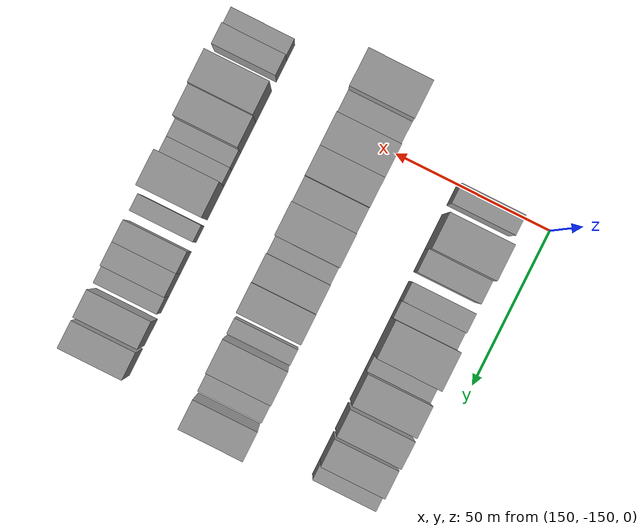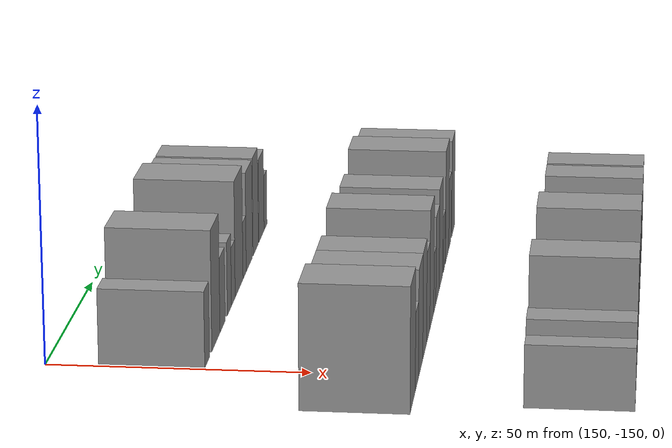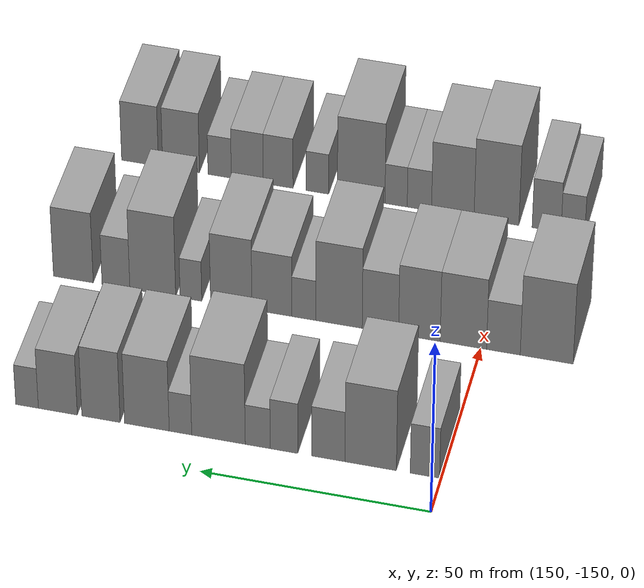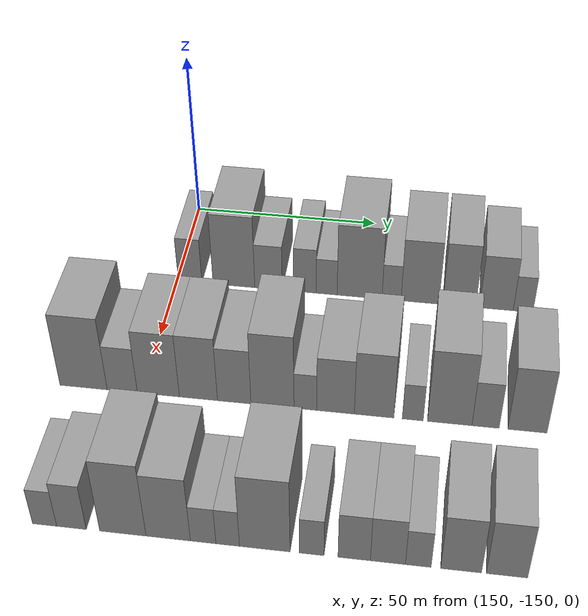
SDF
<sdf version="1.6">
 <world name="default">
  <model name="building_469">
   <static>1</static>
   <pose>170.0000 -146.4480 0 0.000000 0.000000 0.000000</pose>
   <link name="link">
    <pose>0 0 7.50 0 0 0</pose>
    <collision name="collision"><geometry><box><size>20.0000 6.3580 15.0000</size></box></geometry></collision>
    <visual name="visual">
     <cast_shadows>0</cast_shadows>
     <geometry><box><size>20.0000 6.3580 15.0000</size></box></geometry>
     <material>
      <script>
       <uri>model://grey_wall/materials/scripts</uri>
       <uri>model://grey_wall/materials/textures</uri>
       <name>vrc/grey_wall</name>
      </script>
     </material>
    </visual>
   </link>
  </model>
  <model name="building_470">
   <static>1</static>
   <pose>170.0000 -134.6839 0 0.000000 0.000000 0.000000</pose>
   <link name="link">
    <pose>0 0 12.00 0 0 0</pose>
    <collision name="collision"><geometry><box><size>20.0000 11.1701 24.0000</size></box></geometry></collision>
    <visual name="visual">
     <cast_shadows>0</cast_shadows>
     <geometry><box><size>20.0000 11.1701 24.0000</size></box></geometry>
     <material>
      <script>
       <uri>model://grey_wall/materials/scripts</uri>
       <uri>model://grey_wall/materials/textures</uri>
       <name>vrc/grey_wall</name>
      </script>
     </material>
    </visual>
   </link>
  </model>
  <model name="building_471">
   <static>1</static>
   <pose>170.0000 -125.4495 0 0.000000 0.000000 0.000000</pose>
   <link name="link">
    <pose>0 0 7.50 0 0 0</pose>
    <collision name="collision"><geometry><box><size>20.0000 7.2988 15.0000</size></box></geometry></collision>
    <visual name="visual">
     <cast_shadows>0</cast_shadows>
     <geometry><box><size>20.0000 7.2988 15.0000</size></box></geometry>
     <material>
      <script>
       <uri>model://grey_wall/materials/scripts</uri>
       <uri>model://grey_wall/materials/textures</uri>
       <name>vrc/grey_wall</name>
      </script>
     </material>
    </visual>
   </link>
  </model>
  <model name="building_472">
   <static>1</static>
   <pose>170.0000 -115.7820 0 0.000000 0.000000 0.000000</pose>
   <link name="link">
    <pose>0 0 7.50 0 0 0</pose>
    <collision name="collision"><geometry><box><size>20.0000 6.0361 15.0000</size></box></geometry></collision>
    <visual name="visual">
     <cast_shadows>0</cast_shadows>
     <geometry><box><size>20.0000 6.0361 15.0000</size></box></geometry>
     <material>
      <script>
       <uri>model://grey_wall/materials/scripts</uri>
       <uri>model://grey_wall/materials/textures</uri>
       <name>vrc/grey_wall</name>
      </script>
     </material>
    </visual>
   </link>
  </model>
  <model name="building_473">
   <static>1</static>
   <pose>170.0000 -110.0253 0 0.000000 0.000000 0.000000</pose>
   <link name="link">
    <pose>0 0 6.00 0 0 0</pose>
    <collision name="collision"><geometry><box><size>20.0000 5.4774 12.0000</size></box></geometry></collision>
    <visual name="visual">
     <cast_shadows>0</cast_shadows>
     <geometry><box><size>20.0000 5.4774 12.0000</size></box></geometry>
     <material>
      <script>
       <uri>model://grey_wall/materials/scripts</uri>
       <uri>model://grey_wall/materials/textures</uri>
       <name>vrc/grey_wall</name>
      </script>
     </material>
    </visual>
   </link>
  </model>
  <model name="building_474">
   <static>1</static>
   <pose>170.0000 -101.3930 0 0.000000 0.000000 0.000000</pose>
   <link name="link">
    <pose>0 0 12.00 0 0 0</pose>
    <collision name="collision"><geometry><box><size>20.0000 11.7872 24.0000</size></box></geometry></collision>
    <visual name="visual">
     <cast_shadows>0</cast_shadows>
     <geometry><box><size>20.0000 11.7872 24.0000</size></box></geometry>
     <material>
      <script>
       <uri>model://grey_wall/materials/scripts</uri>
       <uri>model://grey_wall/materials/textures</uri>
       <name>vrc/grey_wall</name>
      </script>
     </material>
    </visual>
   </link>
  </model>
  <model name="building_475">
   <static>1</static>
   <pose>170.0000 -93.0215 0 0.000000 0.000000 0.000000</pose>
   <link name="link">
    <pose>0 0 6.00 0 0 0</pose>
    <collision name="collision"><geometry><box><size>20.0000 4.9559 12.0000</size></box></geometry></collision>
    <visual name="visual">
     <cast_shadows>0</cast_shadows>
     <geometry><box><size>20.0000 4.9559 12.0000</size></box></geometry>
     <material>
      <script>
       <uri>model://grey_wall/materials/scripts</uri>
       <uri>model://grey_wall/materials/textures</uri>
       <name>vrc/grey_wall</name>
      </script>
     </material>
    </visual>
   </link>
  </model>
  <model name="building_476">
   <static>1</static>
   <pose>170.0000 -85.6136 0 0.000000 0.000000 0.000000</pose>
   <link name="link">
    <pose>0 0 10.50 0 0 0</pose>
    <collision name="collision"><geometry><box><size>20.0000 9.8600 21.0000</size></box></geometry></collision>
    <visual name="visual">
     <cast_shadows>0</cast_shadows>
     <geometry><box><size>20.0000 9.8600 21.0000</size></box></geometry>
     <material>
      <script>
       <uri>model://grey_wall/materials/scripts</uri>
       <uri>model://grey_wall/materials/textures</uri>
       <name>vrc/grey_wall</name>
      </script>
     </material>
    </visual>
   </link>
  </model>
  <model name="building_477">
   <static>1</static>
   <pose>170.0000 -75.4367 0 0.000000 0.000000 0.000000</pose>
   <link name="link">
    <pose>0 0 10.50 0 0 0</pose>
    <collision name="collision"><geometry><box><size>20.0000 8.4937 21.0000</size></box></geometry></collision>
    <visual name="visual">
     <cast_shadows>0</cast_shadows>
     <geometry><box><size>20.0000 8.4937 21.0000</size></box></geometry>
     <material>
      <script>
       <uri>model://grey_wall/materials/scripts</uri>
       <uri>model://grey_wall/materials/textures</uri>
       <name>vrc/grey_wall</name>
      </script>
     </material>
    </visual>
   </link>
  </model>
  <model name="building_478">
   <static>1</static>
   <pose>170.0000 -65.8563 0 0.000000 0.000000 0.000000</pose>
   <link name="link">
    <pose>0 0 9.00 0 0 0</pose>
    <collision name="collision"><geometry><box><size>20.0000 8.6671 18.0000</size></box></geometry></collision>
    <visual name="visual">
     <cast_shadows>0</cast_shadows>
     <geometry><box><size>20.0000 8.6671 18.0000</size></box></geometry>
     <material>
      <script>
       <uri>model://grey_wall/materials/scripts</uri>
       <uri>model://grey_wall/materials/textures</uri>
       <name>vrc/grey_wall</name>
      </script>
     </material>
    </visual>
   </link>
  </model>
  <model name="building_479">
   <static>1</static>
   <pose>170.0000 -59.0038 0 0.000000 0.000000 0.000000</pose>
   <link name="link">
    <pose>0 0 6.00 0 0 0</pose>
    <collision name="collision"><geometry><box><size>20.0000 5.0380 12.0000</size></box></geometry></collision>
    <visual name="visual">
     <cast_shadows>0</cast_shadows>
     <geometry><box><size>20.0000 5.0380 12.0000</size></box></geometry>
     <material>
      <script>
       <uri>model://grey_wall/materials/scripts</uri>
       <uri>model://grey_wall/materials/textures</uri>
       <name>vrc/grey_wall</name>
      </script>
     </material>
    </visual>
   </link>
  </model>
  <model name="building_594">
   <static>1</static>
   <pose>210.0000 -164.5522 0 0.000000 0.000000 0.000000</pose>
   <link name="link">
    <pose>0 0 12.00 0 0 0</pose>
    <collision name="collision"><geometry><box><size>20.0000 11.7054 24.0000</size></box></geometry></collision>
    <visual name="visual">
     <cast_shadows>0</cast_shadows>
     <geometry><box><size>20.0000 11.7054 24.0000</size></box></geometry>
     <material>
      <script>
       <uri>model://grey_wall/materials/scripts</uri>
       <uri>model://grey_wall/materials/textures</uri>
       <name>vrc/grey_wall</name>
      </script>
     </material>
    </visual>
   </link>
  </model>
  <model name="building_595">
   <static>1</static>
   <pose>210.0000 -154.9670 0 0.000000 0.000000 0.000000</pose>
   <link name="link">
    <pose>0 0 7.50 0 0 0</pose>
    <collision name="collision"><geometry><box><size>20.0000 7.4651 15.0000</size></box></geometry></collision>
    <visual name="visual">
     <cast_shadows>0</cast_shadows>
     <geometry><box><size>20.0000 7.4651 15.0000</size></box></geometry>
     <material>
      <script>
       <uri>model://grey_wall/materials/scripts</uri>
       <uri>model://grey_wall/materials/textures</uri>
       <name>vrc/grey_wall</name>
      </script>
     </material>
    </visual>
   </link>
  </model>
  <model name="building_596">
   <static>1</static>
   <pose>210.0000 -146.0755 0 0.000000 0.000000 0.000000</pose>
   <link name="link">
    <pose>0 0 10.50 0 0 0</pose>
    <collision name="collision"><geometry><box><size>20.0000 10.3178 21.0000</size></box></geometry></collision>
    <visual name="visual">
     <cast_shadows>0</cast_shadows>
     <geometry><box><size>20.0000 10.3178 21.0000</size></box></geometry>
     <material>
      <script>
       <uri>model://grey_wall/materials/scripts</uri>
       <uri>model://grey_wall/materials/textures</uri>
       <name>vrc/grey_wall</name>
      </script>
     </material>
    </visual>
   </link>
  </model>
  <model name="building_597">
   <static>1</static>
   <pose>210.0000 -136.2790 0 0.000000 0.000000 0.000000</pose>
   <link name="link">
    <pose>0 0 10.50 0 0 0</pose>
    <collision name="collision"><geometry><box><size>20.0000 9.2751 21.0000</size></box></geometry></collision>
    <visual name="visual">
     <cast_shadows>0</cast_shadows>
     <geometry><box><size>20.0000 9.2751 21.0000</size></box></geometry>
     <material>
      <script>
       <uri>model://grey_wall/materials/scripts</uri>
       <uri>model://grey_wall/materials/textures</uri>
       <name>vrc/grey_wall</name>
      </script>
     </material>
    </visual>
   </link>
  </model>
  <model name="building_598">
   <static>1</static>
   <pose>210.0000 -127.5745 0 0.000000 0.000000 0.000000</pose>
   <link name="link">
    <pose>0 0 9.00 0 0 0</pose>
    <collision name="collision"><geometry><box><size>20.0000 8.1339 18.0000</size></box></geometry></collision>
    <visual name="visual">
     <cast_shadows>0</cast_shadows>
     <geometry><box><size>20.0000 8.1339 18.0000</size></box></geometry>
     <material>
      <script>
       <uri>model://grey_wall/materials/scripts</uri>
       <uri>model://grey_wall/materials/textures</uri>
       <name>vrc/grey_wall</name>
      </script>
     </material>
    </visual>
   </link>
  </model>
  <model name="building_599">
   <static>1</static>
   <pose>210.0000 -118.3195 0 0.000000 0.000000 0.000000</pose>
   <link name="link">
    <pose>0 0 12.00 0 0 0</pose>
    <collision name="collision"><geometry><box><size>20.0000 10.3760 24.0000</size></box></geometry></collision>
    <visual name="visual">
     <cast_shadows>0</cast_shadows>
     <geometry><box><size>20.0000 10.3760 24.0000</size></box></geometry>
     <material>
      <script>
       <uri>model://grey_wall/materials/scripts</uri>
       <uri>model://grey_wall/materials/textures</uri>
       <name>vrc/grey_wall</name>
      </script>
     </material>
    </visual>
   </link>
  </model>
  <model name="building_600">
   <static>1</static>
   <pose>210.0000 -110.4123 0 0.000000 0.000000 0.000000</pose>
   <link name="link">
    <pose>0 0 6.00 0 0 0</pose>
    <collision name="collision"><geometry><box><size>20.0000 5.4385 12.0000</size></box></geometry></collision>
    <visual name="visual">
     <cast_shadows>0</cast_shadows>
     <geometry><box><size>20.0000 5.4385 12.0000</size></box></geometry>
     <material>
      <script>
       <uri>model://grey_wall/materials/scripts</uri>
       <uri>model://grey_wall/materials/textures</uri>
       <name>vrc/grey_wall</name>
      </script>
     </material>
    </visual>
   </link>
  </model>
  <model name="building_601">
   <static>1</static>
   <pose>210.0000 -103.1990 0 0.000000 0.000000 0.000000</pose>
   <link name="link">
    <pose>0 0 9.00 0 0 0</pose>
    <collision name="collision"><geometry><box><size>20.0000 8.9881 18.0000</size></box></geometry></collision>
    <visual name="visual">
     <cast_shadows>0</cast_shadows>
     <geometry><box><size>20.0000 8.9881 18.0000</size></box></geometry>
     <material>
      <script>
       <uri>model://grey_wall/materials/scripts</uri>
       <uri>model://grey_wall/materials/textures</uri>
       <name>vrc/grey_wall</name>
      </script>
     </material>
    </visual>
   </link>
  </model>
  <model name="building_602">
   <static>1</static>
   <pose>210.0000 -94.0237 0 0.000000 0.000000 0.000000</pose>
   <link name="link">
    <pose>0 0 10.50 0 0 0</pose>
    <collision name="collision"><geometry><box><size>20.0000 9.3627 21.0000</size></box></geometry></collision>
    <visual name="visual">
     <cast_shadows>0</cast_shadows>
     <geometry><box><size>20.0000 9.3627 21.0000</size></box></geometry>
     <material>
      <script>
       <uri>model://grey_wall/materials/scripts</uri>
       <uri>model://grey_wall/materials/textures</uri>
       <name>vrc/grey_wall</name>
      </script>
     </material>
    </visual>
   </link>
  </model>
  <model name="building_603">
   <static>1</static>
   <pose>210.0000 -84.8822 0 0.000000 0.000000 0.000000</pose>
   <link name="link">
    <pose>0 0 6.00 0 0 0</pose>
    <collision name="collision"><geometry><box><size>20.0000 4.9202 12.0000</size></box></geometry></collision>
    <visual name="visual">
     <cast_shadows>0</cast_shadows>
     <geometry><box><size>20.0000 4.9202 12.0000</size></box></geometry>
     <material>
      <script>
       <uri>model://grey_wall/materials/scripts</uri>
       <uri>model://grey_wall/materials/textures</uri>
       <name>vrc/grey_wall</name>
      </script>
     </material>
    </visual>
   </link>
  </model>
  <model name="building_604">
   <static>1</static>
   <pose>210.0000 -76.2095 0 0.000000 0.000000 0.000000</pose>
   <link name="link">
    <pose>0 0 12.00 0 0 0</pose>
    <collision name="collision"><geometry><box><size>20.0000 10.4253 24.0000</size></box></geometry></collision>
    <visual name="visual">
     <cast_shadows>0</cast_shadows>
     <geometry><box><size>20.0000 10.4253 24.0000</size></box></geometry>
     <material>
      <script>
       <uri>model://grey_wall/materials/scripts</uri>
       <uri>model://grey_wall/materials/textures</uri>
       <name>vrc/grey_wall</name>
      </script>
     </material>
    </visual>
   </link>
  </model>
  <model name="building_605">
   <static>1</static>
   <pose>210.0000 -67.8188 0 0.000000 0.000000 0.000000</pose>
   <link name="link">
    <pose>0 0 7.50 0 0 0</pose>
    <collision name="collision"><geometry><box><size>20.0000 6.3562 15.0000</size></box></geometry></collision>
    <visual name="visual">
     <cast_shadows>0</cast_shadows>
     <geometry><box><size>20.0000 6.3562 15.0000</size></box></geometry>
     <material>
      <script>
       <uri>model://grey_wall/materials/scripts</uri>
       <uri>model://grey_wall/materials/textures</uri>
       <name>vrc/grey_wall</name>
      </script>
     </material>
    </visual>
   </link>
  </model>
  <model name="building_606">
   <static>1</static>
   <pose>210.0000 -58.0944 0 0.000000 0.000000 0.000000</pose>
   <link name="link">
    <pose>0 0 10.50 0 0 0</pose>
    <collision name="collision"><geometry><box><size>20.0000 9.0926 21.0000</size></box></geometry></collision>
    <visual name="visual">
     <cast_shadows>0</cast_shadows>
     <geometry><box><size>20.0000 9.0926 21.0000</size></box></geometry>
     <material>
      <script>
       <uri>model://grey_wall/materials/scripts</uri>
       <uri>model://grey_wall/materials/textures</uri>
       <name>vrc/grey_wall</name>
      </script>
     </material>
    </visual>
   </link>
  </model>
  <model name="building_733">
   <static>1</static>
   <pose>250.0000 -162.3599 0 0.000000 0.000000 0.000000</pose>
   <link name="link">
    <pose>0 0 6.00 0 0 0</pose>
    <collision name="collision"><geometry><box><size>20.0000 5.3943 12.0000</size></box></geometry></collision>
    <visual name="visual">
     <cast_shadows>0</cast_shadows>
     <geometry><box><size>20.0000 5.3943 12.0000</size></box></geometry>
     <material>
      <script>
       <uri>model://grey_wall/materials/scripts</uri>
       <uri>model://grey_wall/materials/textures</uri>
       <name>vrc/grey_wall</name>
      </script>
     </material>
    </visual>
   </link>
  </model>
  <model name="building_734">
   <static>1</static>
   <pose>250.0000 -156.3688 0 0.000000 0.000000 0.000000</pose>
   <link name="link">
    <pose>0 0 7.50 0 0 0</pose>
    <collision name="collision"><geometry><box><size>20.0000 6.5880 15.0000</size></box></geometry></collision>
    <visual name="visual">
     <cast_shadows>0</cast_shadows>
     <geometry><box><size>20.0000 6.5880 15.0000</size></box></geometry>
     <material>
      <script>
       <uri>model://grey_wall/materials/scripts</uri>
       <uri>model://grey_wall/materials/textures</uri>
       <name>vrc/grey_wall</name>
      </script>
     </material>
    </visual>
   </link>
  </model>
  <model name="building_735">
   <static>1</static>
   <pose>250.0000 -144.9502 0 0.000000 0.000000 0.000000</pose>
   <link name="link">
    <pose>0 0 12.00 0 0 0</pose>
    <collision name="collision"><geometry><box><size>20.0000 10.2491 24.0000</size></box></geometry></collision>
    <visual name="visual">
     <cast_shadows>0</cast_shadows>
     <geometry><box><size>20.0000 10.2491 24.0000</size></box></geometry>
     <material>
      <script>
       <uri>model://grey_wall/materials/scripts</uri>
       <uri>model://grey_wall/materials/textures</uri>
       <name>vrc/grey_wall</name>
      </script>
     </material>
    </visual>
   </link>
  </model>
  <model name="building_736">
   <static>1</static>
   <pose>250.0000 -134.9569 0 0.000000 0.000000 0.000000</pose>
   <link name="link">
    <pose>0 0 10.50 0 0 0</pose>
    <collision name="collision"><geometry><box><size>20.0000 9.7377 21.0000</size></box></geometry></collision>
    <visual name="visual">
     <cast_shadows>0</cast_shadows>
     <geometry><box><size>20.0000 9.7377 21.0000</size></box></geometry>
     <material>
      <script>
       <uri>model://grey_wall/materials/scripts</uri>
       <uri>model://grey_wall/materials/textures</uri>
       <name>vrc/grey_wall</name>
      </script>
     </material>
    </visual>
   </link>
  </model>
  <model name="building_737">
   <static>1</static>
   <pose>250.0000 -127.3002 0 0.000000 0.000000 0.000000</pose>
   <link name="link">
    <pose>0 0 6.00 0 0 0</pose>
    <collision name="collision"><geometry><box><size>20.0000 5.5757 12.0000</size></box></geometry></collision>
    <visual name="visual">
     <cast_shadows>0</cast_shadows>
     <geometry><box><size>20.0000 5.5757 12.0000</size></box></geometry>
     <material>
      <script>
       <uri>model://grey_wall/materials/scripts</uri>
       <uri>model://grey_wall/materials/textures</uri>
       <name>vrc/grey_wall</name>
      </script>
     </material>
    </visual>
   </link>
  </model>
  <model name="building_738">
   <static>1</static>
   <pose>250.0000 -121.9573 0 0.000000 0.000000 0.000000</pose>
   <link name="link">
    <pose>0 0 6.00 0 0 0</pose>
    <collision name="collision"><geometry><box><size>20.0000 5.1099 12.0000</size></box></geometry></collision>
    <visual name="visual">
     <cast_shadows>0</cast_shadows>
     <geometry><box><size>20.0000 5.1099 12.0000</size></box></geometry>
     <material>
      <script>
       <uri>model://grey_wall/materials/scripts</uri>
       <uri>model://grey_wall/materials/textures</uri>
       <name>vrc/grey_wall</name>
      </script>
     </material>
    </visual>
   </link>
  </model>
  <model name="building_739">
   <static>1</static>
   <pose>250.0000 -113.9243 0 0.000000 0.000000 0.000000</pose>
   <link name="link">
    <pose>0 0 12.00 0 0 0</pose>
    <collision name="collision"><geometry><box><size>20.0000 10.9561 24.0000</size></box></geometry></collision>
    <visual name="visual">
     <cast_shadows>0</cast_shadows>
     <geometry><box><size>20.0000 10.9561 24.0000</size></box></geometry>
     <material>
      <script>
       <uri>model://grey_wall/materials/scripts</uri>
       <uri>model://grey_wall/materials/textures</uri>
       <name>vrc/grey_wall</name>
      </script>
     </material>
    </visual>
   </link>
  </model>
  <model name="building_740">
   <static>1</static>
   <pose>250.0000 -103.8086 0 0.000000 0.000000 0.000000</pose>
   <link name="link">
    <pose>0 0 6.00 0 0 0</pose>
    <collision name="collision"><geometry><box><size>20.0000 5.2754 12.0000</size></box></geometry></collision>
    <visual name="visual">
     <cast_shadows>0</cast_shadows>
     <geometry><box><size>20.0000 5.2754 12.0000</size></box></geometry>
     <material>
      <script>
       <uri>model://grey_wall/materials/scripts</uri>
       <uri>model://grey_wall/materials/textures</uri>
       <name>vrc/grey_wall</name>
      </script>
     </material>
    </visual>
   </link>
  </model>
  <model name="building_741">
   <static>1</static>
   <pose>250.0000 -94.7189 0 0.000000 0.000000 0.000000</pose>
   <link name="link">
    <pose>0 0 7.50 0 0 0</pose>
    <collision name="collision"><geometry><box><size>20.0000 6.9039 15.0000</size></box></geometry></collision>
    <visual name="visual">
     <cast_shadows>0</cast_shadows>
     <geometry><box><size>20.0000 6.9039 15.0000</size></box></geometry>
     <material>
      <script>
       <uri>model://grey_wall/materials/scripts</uri>
       <uri>model://grey_wall/materials/textures</uri>
       <name>vrc/grey_wall</name>
      </script>
     </material>
    </visual>
   </link>
  </model>
  <model name="building_742">
   <static>1</static>
   <pose>250.0000 -87.5531 0 0.000000 0.000000 0.000000</pose>
   <link name="link">
    <pose>0 0 7.50 0 0 0</pose>
    <collision name="collision"><geometry><box><size>20.0000 7.4277 15.0000</size></box></geometry></collision>
    <visual name="visual">
     <cast_shadows>0</cast_shadows>
     <geometry><box><size>20.0000 7.4277 15.0000</size></box></geometry>
     <material>
      <script>
       <uri>model://grey_wall/materials/scripts</uri>
       <uri>model://grey_wall/materials/textures</uri>
       <name>vrc/grey_wall</name>
      </script>
     </material>
    </visual>
   </link>
  </model>
  <model name="building_743">
   <static>1</static>
   <pose>250.0000 -81.1279 0 0.000000 0.000000 0.000000</pose>
   <link name="link">
    <pose>0 0 6.00 0 0 0</pose>
    <collision name="collision"><geometry><box><size>20.0000 5.4227 12.0000</size></box></geometry></collision>
    <visual name="visual">
     <cast_shadows>0</cast_shadows>
     <geometry><box><size>20.0000 5.4227 12.0000</size></box></geometry>
     <material>
      <script>
       <uri>model://grey_wall/materials/scripts</uri>
       <uri>model://grey_wall/materials/textures</uri>
       <name>vrc/grey_wall</name>
      </script>
     </material>
    </visual>
   </link>
  </model>
  <model name="building_744">
   <static>1</static>
   <pose>250.0000 -72.1257 0 0.000000 0.000000 0.000000</pose>
   <link name="link">
    <pose>0 0 9.00 0 0 0</pose>
    <collision name="collision"><geometry><box><size>20.0000 8.5818 18.0000</size></box></geometry></collision>
    <visual name="visual">
     <cast_shadows>0</cast_shadows>
     <geometry><box><size>20.0000 8.5818 18.0000</size></box></geometry>
     <material>
      <script>
       <uri>model://grey_wall/materials/scripts</uri>
       <uri>model://grey_wall/materials/textures</uri>
       <name>vrc/grey_wall</name>
      </script>
     </material>
    </visual>
   </link>
  </model>
  <model name="building_745">
   <static>1</static>
   <pose>250.0000 -62.5275 0 0.000000 0.000000 0.000000</pose>
   <link name="link">
    <pose>0 0 9.00 0 0 0</pose>
    <collision name="collision"><geometry><box><size>20.0000 8.6145 18.0000</size></box></geometry></collision>
    <visual name="visual">
     <cast_shadows>0</cast_shadows>
     <geometry><box><size>20.0000 8.6145 18.0000</size></box></geometry>
     <material>
      <script>
       <uri>model://grey_wall/materials/scripts</uri>
       <uri>model://grey_wall/materials/textures</uri>
       <name>vrc/grey_wall</name>
      </script>
     </material>
    </visual>
   </link>
  </model>
 </world>
</sdf>
